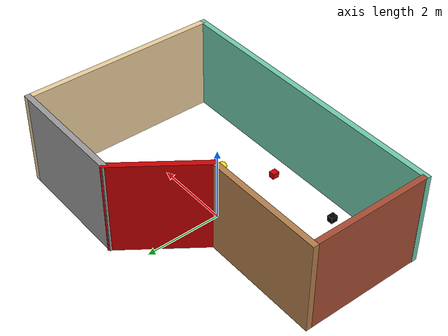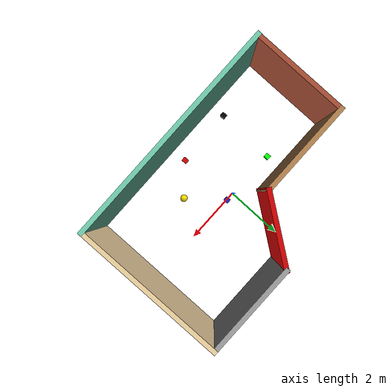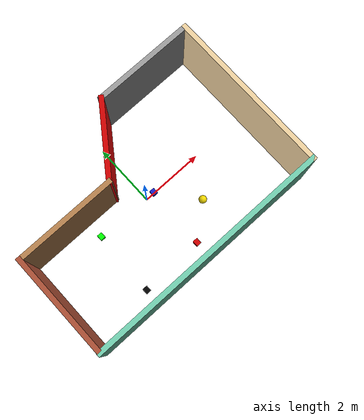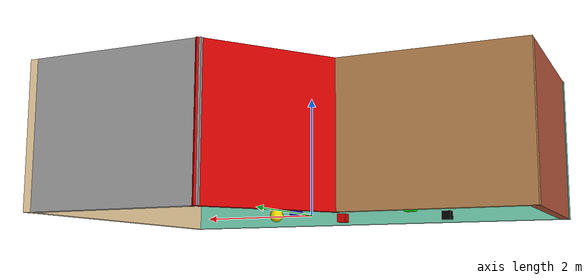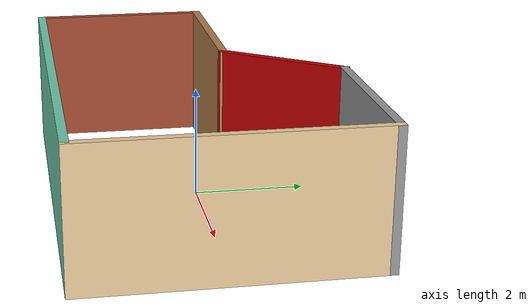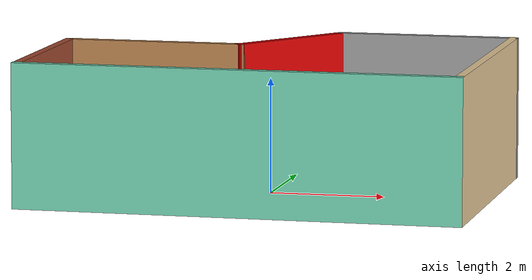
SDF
<?xml version='1.0'?>
<sdf version='1.7'>
  <model name='wsd'>
    <link name='Wall_0'>
      <pose>0 -2.56489 0 0 -0 0</pose>
      <self_collide>0</self_collide>
      <enable_wind>0</enable_wind>
      <kinematic>0</kinematic>
      <visual name='visual'>
        <pose>0 0 1.25 0 -0 0</pose>
        <geometry>
          <box>
            <size>7.75 0.15 2.5</size>
          </box>
        </geometry>
        <material>
          <script>
            <uri>file://media/materials/scripts/gazebo.material</uri>
            <name>Gazebo/Grey</name>
          </script>
          <ambient>0.435294 0.796078 0.67451 1</ambient>
          <shader type='pixel'/>
        </material>
        <transparency>0</transparency>
        <cast_shadows>1</cast_shadows>
      </visual>
      <collision name='collision'>
        <laser_retro>0</laser_retro>
        <max_contacts>10</max_contacts>
        <pose>0 0 1.25 0 -0 0</pose>
        <geometry>
          <box>
            <size>7.75 0.15 2.5</size>
          </box>
        </geometry>
        <surface>
          <friction>
            <ode>
              <mu>1</mu>
              <mu2>1</mu2>
              <fdir1>0 0 0</fdir1>
              <slip1>0</slip1>
              <slip2>0</slip2>
            </ode>
            <torsional>
              <coefficient>1</coefficient>
              <patch_radius>0</patch_radius>
              <surface_radius>0</surface_radius>
              <use_patch_radius>1</use_patch_radius>
              <ode>
                <slip>0</slip>
              </ode>
            </torsional>
          </friction>
          <bounce>
            <restitution_coefficient>0</restitution_coefficient>
            <threshold>1e+06</threshold>
          </bounce>
          <contact>
            <collide_without_contact>0</collide_without_contact>
            <collide_without_contact_bitmask>1</collide_without_contact_bitmask>
            <collide_bitmask>1</collide_bitmask>
            <ode>
              <soft_cfm>0</soft_cfm>
              <soft_erp>0.2</soft_erp>
              <kp>1e+13</kp>
              <kd>1</kd>
              <max_vel>0.01</max_vel>
              <min_depth>0</min_depth>
            </ode>
            <bullet>
              <split_impulse>1</split_impulse>
              <split_impulse_penetration_threshold>-0.01</split_impulse_penetration_threshold>
              <soft_cfm>0</soft_cfm>
              <soft_erp>0.2</soft_erp>
              <kp>1e+13</kp>
              <kd>1</kd>
            </bullet>
          </contact>
        </surface>
      </collision>
    </link>
    <link name='Wall_1'>
      <pose>3.8 -0.014889 0 0 -0 1.5708</pose>
      <self_collide>0</self_collide>
      <enable_wind>0</enable_wind>
      <kinematic>0</kinematic>
      <visual name='visual'>
        <pose>0 0 1.25 0 -0 0</pose>
        <geometry>
          <box>
            <size>5.25 0.15 2.5</size>
          </box>
        </geometry>
        <material>
          <script>
            <uri>file://media/materials/scripts/gazebo.material</uri>
            <name>Gazebo/Grey</name>
          </script>
          <ambient>0.921569 0.807843 0.615686 1</ambient>
          <shader type='pixel'/>
        </material>
        <transparency>0</transparency>
        <cast_shadows>1</cast_shadows>
      </visual>
      <collision name='collision'>
        <laser_retro>0</laser_retro>
        <max_contacts>10</max_contacts>
        <pose>0 0 1.25 0 -0 0</pose>
        <geometry>
          <box>
            <size>5.25 0.15 2.5</size>
          </box>
        </geometry>
        <surface>
          <friction>
            <ode>
              <mu>1</mu>
              <mu2>1</mu2>
              <fdir1>0 0 0</fdir1>
              <slip1>0</slip1>
              <slip2>0</slip2>
            </ode>
            <torsional>
              <coefficient>1</coefficient>
              <patch_radius>0</patch_radius>
              <surface_radius>0</surface_radius>
              <use_patch_radius>1</use_patch_radius>
              <ode>
                <slip>0</slip>
              </ode>
            </torsional>
          </friction>
          <bounce>
            <restitution_coefficient>0</restitution_coefficient>
            <threshold>1e+06</threshold>
          </bounce>
          <contact>
            <collide_without_contact>0</collide_without_contact>
            <collide_without_contact_bitmask>1</collide_without_contact_bitmask>
            <collide_bitmask>1</collide_bitmask>
            <ode>
              <soft_cfm>0</soft_cfm>
              <soft_erp>0.2</soft_erp>
              <kp>1e+13</kp>
              <kd>1</kd>
              <max_vel>0.01</max_vel>
              <min_depth>0</min_depth>
            </ode>
            <bullet>
              <split_impulse>1</split_impulse>
              <split_impulse_penetration_threshold>-0.01</split_impulse_penetration_threshold>
              <soft_cfm>0</soft_cfm>
              <soft_erp>0.2</soft_erp>
              <kp>1e+13</kp>
              <kd>1</kd>
            </bullet>
          </contact>
        </surface>
      </collision>
    </link>
    <link name='Wall_2'>
      <pose>2.25 2.53511 0 0 -0 3.14159</pose>
      <self_collide>0</self_collide>
      <enable_wind>0</enable_wind>
      <kinematic>0</kinematic>
      <visual name='visual'>
        <pose>0 0 1.25 0 -0 0</pose>
        <geometry>
          <box>
            <size>3.25 0.15 2.5</size>
          </box>
        </geometry>
        <material>
          <script>
            <uri>file://media/materials/scripts/gazebo.material</uri>
            <name>Gazebo/Grey</name>
          </script>
          <ambient>1 1 1 1</ambient>
          <shader type='pixel'/>
        </material>
        <transparency>0</transparency>
        <cast_shadows>1</cast_shadows>
      </visual>
      <collision name='collision'>
        <laser_retro>0</laser_retro>
        <max_contacts>10</max_contacts>
        <pose>0 0 1.25 0 -0 0</pose>
        <geometry>
          <box>
            <size>3.25 0.15 2.5</size>
          </box>
        </geometry>
        <surface>
          <friction>
            <ode>
              <mu>1</mu>
              <mu2>1</mu2>
              <fdir1>0 0 0</fdir1>
              <slip1>0</slip1>
              <slip2>0</slip2>
            </ode>
            <torsional>
              <coefficient>1</coefficient>
              <patch_radius>0</patch_radius>
              <surface_radius>0</surface_radius>
              <use_patch_radius>1</use_patch_radius>
              <ode>
                <slip>0</slip>
              </ode>
            </torsional>
          </friction>
          <bounce>
            <restitution_coefficient>0</restitution_coefficient>
            <threshold>1e+06</threshold>
          </bounce>
          <contact>
            <collide_without_contact>0</collide_without_contact>
            <collide_without_contact_bitmask>1</collide_without_contact_bitmask>
            <collide_bitmask>1</collide_bitmask>
            <ode>
              <soft_cfm>0</soft_cfm>
              <soft_erp>0.2</soft_erp>
              <kp>1e+13</kp>
              <kd>1</kd>
              <max_vel>0.01</max_vel>
              <min_depth>0</min_depth>
            </ode>
            <bullet>
              <split_impulse>1</split_impulse>
              <split_impulse_penetration_threshold>-0.01</split_impulse_penetration_threshold>
              <soft_cfm>0</soft_cfm>
              <soft_erp>0.2</soft_erp>
              <kp>1e+13</kp>
              <kd>1</kd>
            </bullet>
          </contact>
        </surface>
      </collision>
    </link>
    <link name='Wall_3'>
      <pose>0.004348 1.57987 0 0 0 -2.20023</pose>
      <self_collide>0</self_collide>
      <enable_wind>0</enable_wind>
      <kinematic>0</kinematic>
      <visual name='visual'>
        <pose>0 0 1.25 0 -0 0</pose>
        <geometry>
          <box>
            <size>2.51341 0.15 2.5</size>
          </box>
        </geometry>
        <material>
          <script>
            <uri>file://media/materials/scripts/gazebo.material</uri>
            <name>Gazebo/Grey</name>
          </script>
          <ambient>0.8 0 0 1</ambient>
          <shader type='pixel'/>
        </material>
        <transparency>0</transparency>
        <cast_shadows>1</cast_shadows>
      </visual>
      <collision name='collision'>
        <laser_retro>0</laser_retro>
        <max_contacts>10</max_contacts>
        <pose>0 0 1.25 0 -0 0</pose>
        <geometry>
          <box>
            <size>2.51341 0.15 2.5</size>
          </box>
        </geometry>
        <surface>
          <friction>
            <ode>
              <mu>1</mu>
              <mu2>1</mu2>
              <fdir1>0 0 0</fdir1>
              <slip1>0</slip1>
              <slip2>0</slip2>
            </ode>
            <torsional>
              <coefficient>1</coefficient>
              <patch_radius>0</patch_radius>
              <surface_radius>0</surface_radius>
              <use_patch_radius>1</use_patch_radius>
              <ode>
                <slip>0</slip>
              </ode>
            </torsional>
          </friction>
          <bounce>
            <restitution_coefficient>0</restitution_coefficient>
            <threshold>1e+06</threshold>
          </bounce>
          <contact>
            <collide_without_contact>0</collide_without_contact>
            <collide_without_contact_bitmask>1</collide_without_contact_bitmask>
            <collide_bitmask>1</collide_bitmask>
            <ode>
              <soft_cfm>0</soft_cfm>
              <soft_erp>0.2</soft_erp>
              <kp>1e+13</kp>
              <kd>1</kd>
              <max_vel>0.01</max_vel>
              <min_depth>0</min_depth>
            </ode>
            <bullet>
              <split_impulse>1</split_impulse>
              <split_impulse_penetration_threshold>-0.01</split_impulse_penetration_threshold>
              <soft_cfm>0</soft_cfm>
              <soft_erp>0.2</soft_erp>
              <kp>1e+13</kp>
              <kd>1</kd>
            </bullet>
          </contact>
        </surface>
      </collision>
    </link>
    <link name='Wall_4'>
      <pose>-2.2413 0.624619 0 0 -0 3.14159</pose>
      <self_collide>0</self_collide>
      <enable_wind>0</enable_wind>
      <kinematic>0</kinematic>
      <visual name='visual'>
        <pose>0 0 1.25 0 -0 0</pose>
        <geometry>
          <box>
            <size>3.25 0.15 2.5</size>
          </box>
        </geometry>
        <material>
          <script>
            <uri>file://media/materials/scripts/gazebo.material</uri>
            <name>Gazebo/Wood</name>
          </script>
          <ambient>1 1 1 1</ambient>
          <shader type='pixel'/>
        </material>
        <transparency>0</transparency>
        <cast_shadows>1</cast_shadows>
      </visual>
      <collision name='collision'>
        <laser_retro>0</laser_retro>
        <max_contacts>10</max_contacts>
        <pose>0 0 1.25 0 -0 0</pose>
        <geometry>
          <box>
            <size>3.25 0.15 2.5</size>
          </box>
        </geometry>
        <surface>
          <friction>
            <ode>
              <mu>1</mu>
              <mu2>1</mu2>
              <fdir1>0 0 0</fdir1>
              <slip1>0</slip1>
              <slip2>0</slip2>
            </ode>
            <torsional>
              <coefficient>1</coefficient>
              <patch_radius>0</patch_radius>
              <surface_radius>0</surface_radius>
              <use_patch_radius>1</use_patch_radius>
              <ode>
                <slip>0</slip>
              </ode>
            </torsional>
          </friction>
          <bounce>
            <restitution_coefficient>0</restitution_coefficient>
            <threshold>1e+06</threshold>
          </bounce>
          <contact>
            <collide_without_contact>0</collide_without_contact>
            <collide_without_contact_bitmask>1</collide_without_contact_bitmask>
            <collide_bitmask>1</collide_bitmask>
            <ode>
              <soft_cfm>0</soft_cfm>
              <soft_erp>0.2</soft_erp>
              <kp>1e+13</kp>
              <kd>1</kd>
              <max_vel>0.01</max_vel>
              <min_depth>0</min_depth>
            </ode>
            <bullet>
              <split_impulse>1</split_impulse>
              <split_impulse_penetration_threshold>-0.01</split_impulse_penetration_threshold>
              <soft_cfm>0</soft_cfm>
              <soft_erp>0.2</soft_erp>
              <kp>1e+13</kp>
              <kd>1</kd>
            </bullet>
          </contact>
        </surface>
      </collision>
    </link>
    <link name='Wall_5'>
      <pose>-3.7913 -0.925381 0 0 0 -1.5708</pose>
      <self_collide>0</self_collide>
      <enable_wind>0</enable_wind>
      <kinematic>0</kinematic>
      <visual name='visual'>
        <pose>0 0 1.25 0 -0 0</pose>
        <geometry>
          <box>
            <size>3.25 0.15 2.5</size>
          </box>
        </geometry>
        <material>
          <script>
            <uri>file://media/materials/scripts/gazebo.material</uri>
            <name>Gazebo/Bricks</name>
          </script>
          <ambient>1 1 1 1</ambient>
          <shader type='pixel'/>
        </material>
        <transparency>0</transparency>
        <cast_shadows>1</cast_shadows>
      </visual>
      <collision name='collision'>
        <laser_retro>0</laser_retro>
        <max_contacts>10</max_contacts>
        <pose>0 0 1.25 0 -0 0</pose>
        <geometry>
          <box>
            <size>3.25 0.15 2.5</size>
          </box>
        </geometry>
        <surface>
          <friction>
            <ode>
              <mu>1</mu>
              <mu2>1</mu2>
              <fdir1>0 0 0</fdir1>
              <slip1>0</slip1>
              <slip2>0</slip2>
            </ode>
            <torsional>
              <coefficient>1</coefficient>
              <patch_radius>0</patch_radius>
              <surface_radius>0</surface_radius>
              <use_patch_radius>1</use_patch_radius>
              <ode>
                <slip>0</slip>
              </ode>
            </torsional>
          </friction>
          <bounce>
            <restitution_coefficient>0</restitution_coefficient>
            <threshold>1e+06</threshold>
          </bounce>
          <contact>
            <collide_without_contact>0</collide_without_contact>
            <collide_without_contact_bitmask>1</collide_without_contact_bitmask>
            <collide_bitmask>1</collide_bitmask>
            <ode>
              <soft_cfm>0</soft_cfm>
              <soft_erp>0.2</soft_erp>
              <kp>1e+13</kp>
              <kd>1</kd>
              <max_vel>0.01</max_vel>
              <min_depth>0</min_depth>
            </ode>
            <bullet>
              <split_impulse>1</split_impulse>
              <split_impulse_penetration_threshold>-0.01</split_impulse_penetration_threshold>
              <soft_cfm>0</soft_cfm>
              <soft_erp>0.2</soft_erp>
              <kp>1e+13</kp>
              <kd>1</kd>
            </bullet>
          </contact>
        </surface>
      </collision>
    </link>
    <link name='calib_1'>
      <pose>0.230993 -1.96725 0.097139 0 -0 0</pose>
      <inertial>
        <mass>0.1</mass>
        <inertia>
          <ixx>0.001</ixx>
          <ixy>0</ixy>
          <ixz>0</ixz>
          <iyy>0.001</iyy>
          <iyz>0</iyz>
          <izz>0.001</izz>
        </inertia>
      </inertial>
      <self_collide>0</self_collide>
      <enable_wind>0</enable_wind>
      <kinematic>0</kinematic>
      <visual name='visual'>
        <geometry>
          <box>
            <size>0.159872 0.181488 0.156987</size>
          </box>
        </geometry>
        <material>
          <ambient>0.8 0 0 1</ambient>
          <diffuse>0.8 0 0 1</diffuse>
          <specular>0.8 0 0 1</specular>
          <emissive>0.8 0 0 1</emissive>
          <shader type='pixel'/>
          <script>
            <name>ModelPreview_1::calib_1::visual_MATERIAL_</name>
            <uri>__default__</uri>
          </script>
        </material>
        <pose>0 0 0 0 -0 0</pose>
        <transparency>0</transparency>
        <cast_shadows>1</cast_shadows>
      </visual>
      <collision name='collision'>
        <laser_retro>0</laser_retro>
        <max_contacts>10</max_contacts>
        <pose>0 0 0 0 -0 0</pose>
        <geometry>
          <box>
            <size>0.159872 0.181488 0.156987</size>
          </box>
        </geometry>
        <surface>
          <friction>
            <ode>
              <mu>1</mu>
              <mu2>1</mu2>
              <fdir1>0 0 0</fdir1>
              <slip1>0</slip1>
              <slip2>0</slip2>
            </ode>
            <torsional>
              <coefficient>1</coefficient>
              <patch_radius>0</patch_radius>
              <surface_radius>0</surface_radius>
              <use_patch_radius>1</use_patch_radius>
              <ode>
                <slip>0</slip>
              </ode>
            </torsional>
          </friction>
          <bounce>
            <restitution_coefficient>0</restitution_coefficient>
            <threshold>1e+06</threshold>
          </bounce>
          <contact>
            <collide_without_contact>0</collide_without_contact>
            <collide_without_contact_bitmask>1</collide_without_contact_bitmask>
            <collide_bitmask>1</collide_bitmask>
            <ode>
              <soft_cfm>0</soft_cfm>
              <soft_erp>0.2</soft_erp>
              <kp>1e+13</kp>
              <kd>1</kd>
              <max_vel>0.01</max_vel>
              <min_depth>0</min_depth>
            </ode>
            <bullet>
              <split_impulse>1</split_impulse>
              <split_impulse_penetration_threshold>-0.01</split_impulse_penetration_threshold>
              <soft_cfm>0</soft_cfm>
              <soft_erp>0.2</soft_erp>
              <kp>1e+13</kp>
              <kd>1</kd>
            </bullet>
          </contact>
        </surface>
      </collision>
    </link>
    <link name='calib_2'>
      <pose>-1.74837 0.050953 0.097139 0 -0 0</pose>
      <inertial>
        <mass>0.1</mass>
        <inertia>
          <ixx>0.001</ixx>
          <ixy>0</ixy>
          <ixz>0</ixz>
          <iyy>0.001</iyy>
          <iyz>0</iyz>
          <izz>0.001</izz>
        </inertia>
      </inertial>
      <self_collide>0</self_collide>
      <enable_wind>0</enable_wind>
      <kinematic>0</kinematic>
      <visual name='visual'>
        <geometry>
          <box>
            <size>0.159872 0.181488 0.156987</size>
          </box>
        </geometry>
        <material>
          <ambient>0 1 0 1</ambient>
          <diffuse>0 1 0 1</diffuse>
          <specular>0 1 0 1</specular>
          <emissive>0 1 0 1</emissive>
          <shader type='pixel'/>
          <script>
            <name>ModelPreview_1::calib_2::visual_MATERIAL_</name>
            <uri>__default__</uri>
          </script>
        </material>
        <pose>0 0 0 0 -0 0</pose>
        <transparency>0</transparency>
        <cast_shadows>1</cast_shadows>
      </visual>
      <collision name='collision'>
        <laser_retro>0</laser_retro>
        <max_contacts>10</max_contacts>
        <pose>0 0 0 0 -0 0</pose>
        <geometry>
          <box>
            <size>0.159872 0.181488 0.156987</size>
          </box>
        </geometry>
        <surface>
          <friction>
            <ode>
              <mu>1</mu>
              <mu2>1</mu2>
              <fdir1>0 0 0</fdir1>
              <slip1>0</slip1>
              <slip2>0</slip2>
            </ode>
            <torsional>
              <coefficient>1</coefficient>
              <patch_radius>0</patch_radius>
              <surface_radius>0</surface_radius>
              <use_patch_radius>1</use_patch_radius>
              <ode>
                <slip>0</slip>
              </ode>
            </torsional>
          </friction>
          <bounce>
            <restitution_coefficient>0</restitution_coefficient>
            <threshold>1e+06</threshold>
          </bounce>
          <contact>
            <collide_without_contact>0</collide_without_contact>
            <collide_without_contact_bitmask>1</collide_without_contact_bitmask>
            <collide_bitmask>1</collide_bitmask>
            <ode>
              <soft_cfm>0</soft_cfm>
              <soft_erp>0.2</soft_erp>
              <kp>1e+13</kp>
              <kd>1</kd>
              <max_vel>0.01</max_vel>
              <min_depth>0</min_depth>
            </ode>
            <bullet>
              <split_impulse>1</split_impulse>
              <split_impulse_penetration_threshold>-0.01</split_impulse_penetration_threshold>
              <soft_cfm>0</soft_cfm>
              <soft_erp>0.2</soft_erp>
              <kp>1e+13</kp>
              <kd>1</kd>
            </bullet>
          </contact>
        </surface>
      </collision>
    </link>
    <link name='calib_3'>
      <pose>0.289559 0.013476 0.097139 0 -0 0</pose>
      <inertial>
        <mass>0.1</mass>
        <inertia>
          <ixx>0.001</ixx>
          <ixy>0</ixy>
          <ixz>0</ixz>
          <iyy>0.001</iyy>
          <iyz>0</iyz>
          <izz>0.001</izz>
        </inertia>
      </inertial>
      <self_collide>0</self_collide>
      <enable_wind>0</enable_wind>
      <kinematic>0</kinematic>
      <visual name='visual'>
        <geometry>
          <box>
            <size>0.159872 0.181488 0.156987</size>
          </box>
        </geometry>
        <material>
          <ambient>0.086 0.118 0.776 1</ambient>
          <diffuse>0.086 0.118 0.776 1</diffuse>
          <specular>0.086 0.118 0.776 1</specular>
          <emissive>0.086 0.118 0.776 1</emissive>
          <shader type='pixel'/>
          <script>
            <name>ModelPreview_1::calib_3::visual_MATERIAL_</name>
            <uri>__default__</uri>
          </script>
        </material>
        <pose>0 0 0 0 -0 0</pose>
        <transparency>0</transparency>
        <cast_shadows>1</cast_shadows>
      </visual>
      <collision name='collision'>
        <laser_retro>0</laser_retro>
        <max_contacts>10</max_contacts>
        <pose>0 0 0 0 -0 0</pose>
        <geometry>
          <box>
            <size>0.159872 0.181488 0.156987</size>
          </box>
        </geometry>
        <surface>
          <friction>
            <ode>
              <mu>1</mu>
              <mu2>1</mu2>
              <fdir1>0 0 0</fdir1>
              <slip1>0</slip1>
              <slip2>0</slip2>
            </ode>
            <torsional>
              <coefficient>1</coefficient>
              <patch_radius>0</patch_radius>
              <surface_radius>0</surface_radius>
              <use_patch_radius>1</use_patch_radius>
              <ode>
                <slip>0</slip>
              </ode>
            </torsional>
          </friction>
          <bounce>
            <restitution_coefficient>0</restitution_coefficient>
            <threshold>1e+06</threshold>
          </bounce>
          <contact>
            <collide_without_contact>0</collide_without_contact>
            <collide_without_contact_bitmask>1</collide_without_contact_bitmask>
            <collide_bitmask>1</collide_bitmask>
            <ode>
              <soft_cfm>0</soft_cfm>
              <soft_erp>0.2</soft_erp>
              <kp>1e+13</kp>
              <kd>1</kd>
              <max_vel>0.01</max_vel>
              <min_depth>0</min_depth>
            </ode>
            <bullet>
              <split_impulse>1</split_impulse>
              <split_impulse_penetration_threshold>-0.01</split_impulse_penetration_threshold>
              <soft_cfm>0</soft_cfm>
              <soft_erp>0.2</soft_erp>
              <kp>1e+13</kp>
              <kd>1</kd>
            </bullet>
          </contact>
        </surface>
      </collision>
    </link>
    <link name='calib_4'>
      <pose>-1.7972 -2.01321 0.097139 0 -0 0</pose>
      <inertial>
        <mass>0.1</mass>
        <inertia>
          <ixx>0.001</ixx>
          <ixy>0</ixy>
          <ixz>0</ixz>
          <iyy>0.001</iyy>
          <iyz>0</iyz>
          <izz>0.001</izz>
        </inertia>
      </inertial>
      <self_collide>0</self_collide>
      <enable_wind>0</enable_wind>
      <kinematic>0</kinematic>
      <visual name='visual'>
        <geometry>
          <box>
            <size>0.159872 0.181488 0.156987</size>
          </box>
        </geometry>
        <material>
          <ambient>0 0 0 1</ambient>
          <diffuse>0 0 0 1</diffuse>
          <specular>0 0 0 1</specular>
          <emissive>0 0 0 1</emissive>
          <shader type='pixel'/>
          <script>
            <name>ModelPreview_1::calib_4::visual_MATERIAL_</name>
            <uri>__default__</uri>
          </script>
        </material>
        <pose>0 0 0 0 -0 0</pose>
        <transparency>0</transparency>
        <cast_shadows>1</cast_shadows>
      </visual>
      <collision name='collision'>
        <laser_retro>0</laser_retro>
        <max_contacts>10</max_contacts>
        <pose>0 0 0 0 -0 0</pose>
        <geometry>
          <box>
            <size>0.159872 0.181488 0.156987</size>
          </box>
        </geometry>
        <surface>
          <friction>
            <ode>
              <mu>1</mu>
              <mu2>1</mu2>
              <fdir1>0 0 0</fdir1>
              <slip1>0</slip1>
              <slip2>0</slip2>
            </ode>
            <torsional>
              <coefficient>1</coefficient>
              <patch_radius>0</patch_radius>
              <surface_radius>0</surface_radius>
              <use_patch_radius>1</use_patch_radius>
              <ode>
                <slip>0</slip>
              </ode>
            </torsional>
          </friction>
          <bounce>
            <restitution_coefficient>0</restitution_coefficient>
            <threshold>1e+06</threshold>
          </bounce>
          <contact>
            <collide_without_contact>0</collide_without_contact>
            <collide_without_contact_bitmask>1</collide_without_contact_bitmask>
            <collide_bitmask>1</collide_bitmask>
            <ode>
              <soft_cfm>0</soft_cfm>
              <soft_erp>0.2</soft_erp>
              <kp>1e+13</kp>
              <kd>1</kd>
              <max_vel>0.01</max_vel>
              <min_depth>0</min_depth>
            </ode>
            <bullet>
              <split_impulse>1</split_impulse>
              <split_impulse_penetration_threshold>-0.01</split_impulse_penetration_threshold>
              <soft_cfm>0</soft_cfm>
              <soft_erp>0.2</soft_erp>
              <kp>1e+13</kp>
              <kd>1</kd>
            </bullet>
          </contact>
        </surface>
      </collision>
    </link>
    <link name='link_1'>
      <pose>1.23417 -1.13503 0.122863 0 -0 0</pose>
      <inertial>
        <mass>0.1</mass>
        <inertia>
          <ixx>0.001</ixx>
          <ixy>0</ixy>
          <ixz>0</ixz>
          <iyy>0.001</iyy>
          <iyz>0</iyz>
          <izz>0.001</izz>
        </inertia>
      </inertial>
      <self_collide>0</self_collide>
      <enable_wind>0</enable_wind>
      <kinematic>0</kinematic>
      <visual name='visual'>
        <geometry>
          <sphere>
            <radius>0.12257</radius>
          </sphere>
        </geometry>
        <material>
          <ambient>0.929 0.831 0 1</ambient>
          <diffuse>0.929 0.831 0 1</diffuse>
          <specular>0.929 0.831 0 1</specular>
          <emissive>0.929 0.831 0 1</emissive>
          <shader type='pixel'/>
          <script>
            <name>ModelPreview_1::link_1::visual_MATERIAL_</name>
            <uri>__default__</uri>
          </script>
        </material>
        <pose>0 0 0 0 -0 0</pose>
        <transparency>0</transparency>
        <cast_shadows>1</cast_shadows>
      </visual>
      <collision name='collision'>
        <laser_retro>0</laser_retro>
        <max_contacts>10</max_contacts>
        <pose>0 0 0 0 -0 0</pose>
        <geometry>
          <sphere>
            <radius>0.12257</radius>
          </sphere>
        </geometry>
        <surface>
          <friction>
            <ode>
              <mu>1</mu>
              <mu2>1</mu2>
              <fdir1>0 0 0</fdir1>
              <slip1>0</slip1>
              <slip2>0</slip2>
            </ode>
            <torsional>
              <coefficient>1</coefficient>
              <patch_radius>0</patch_radius>
              <surface_radius>0</surface_radius>
              <use_patch_radius>1</use_patch_radius>
              <ode>
                <slip>0</slip>
              </ode>
            </torsional>
          </friction>
          <bounce>
            <restitution_coefficient>0</restitution_coefficient>
            <threshold>1e+06</threshold>
          </bounce>
          <contact>
            <collide_without_contact>0</collide_without_contact>
            <collide_without_contact_bitmask>1</collide_without_contact_bitmask>
            <collide_bitmask>1</collide_bitmask>
            <ode>
              <soft_cfm>0</soft_cfm>
              <soft_erp>0.2</soft_erp>
              <kp>1e+13</kp>
              <kd>1</kd>
              <max_vel>0.01</max_vel>
              <min_depth>0</min_depth>
            </ode>
            <bullet>
              <split_impulse>1</split_impulse>
              <split_impulse_penetration_threshold>-0.01</split_impulse_penetration_threshold>
              <soft_cfm>0</soft_cfm>
              <soft_erp>0.2</soft_erp>
              <kp>1e+13</kp>
              <kd>1</kd>
            </bullet>
          </contact>
        </surface>
      </collision>
    </link>
    <static>1</static>
    <allow_auto_disable>1</allow_auto_disable>
  </model>
</sdf>
